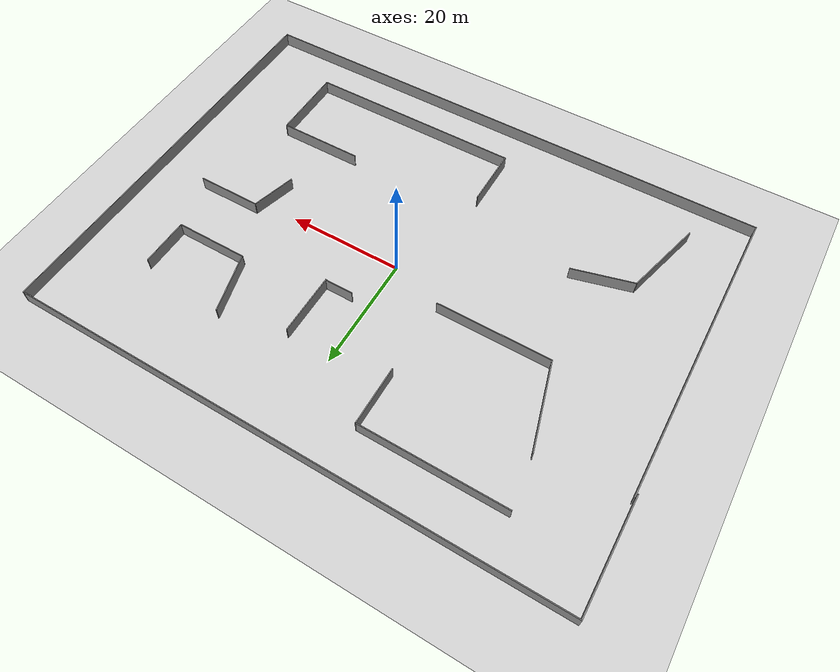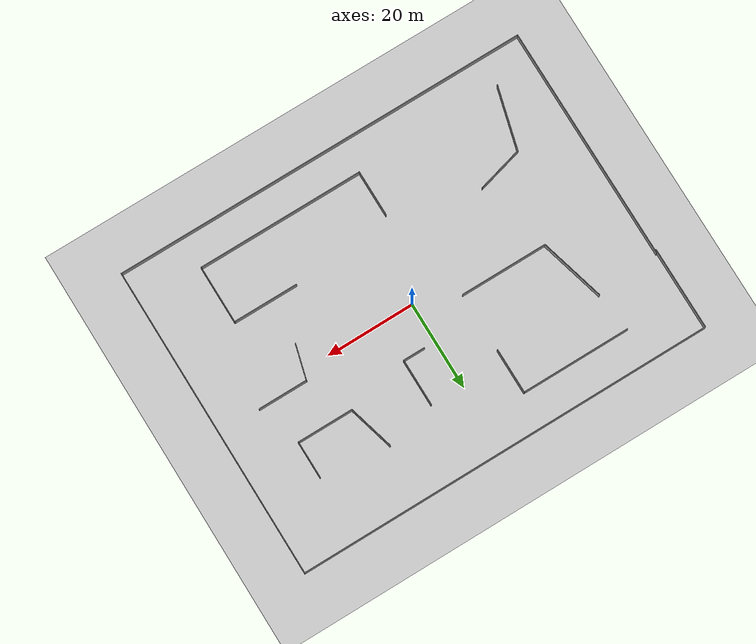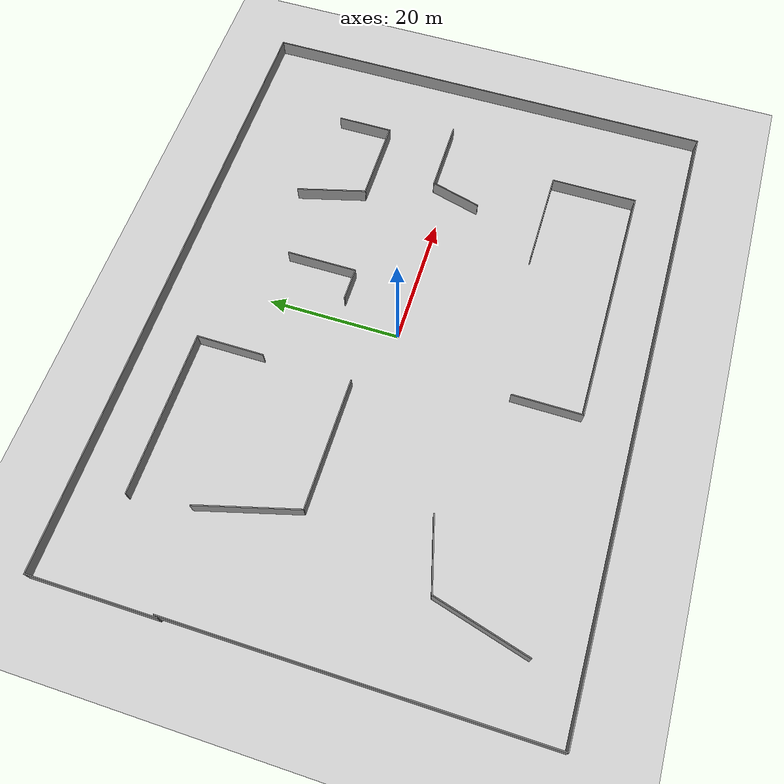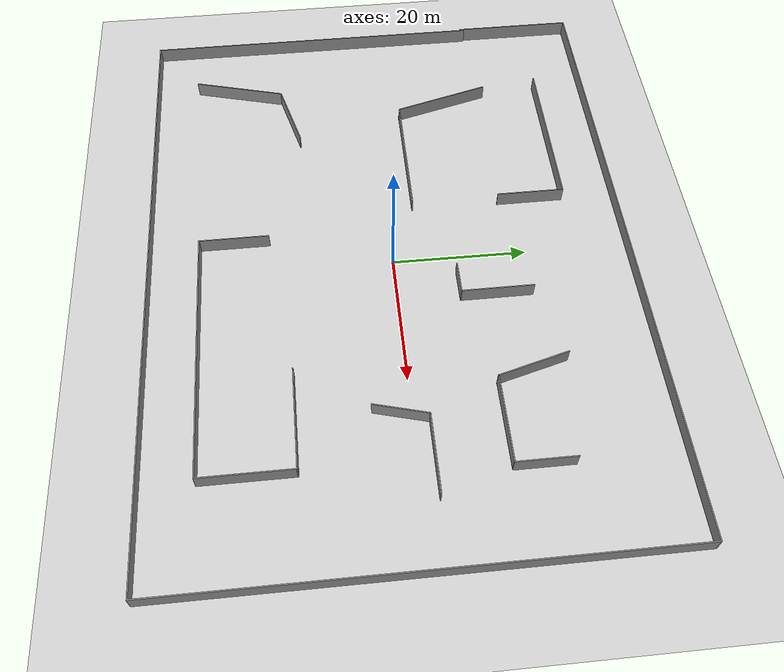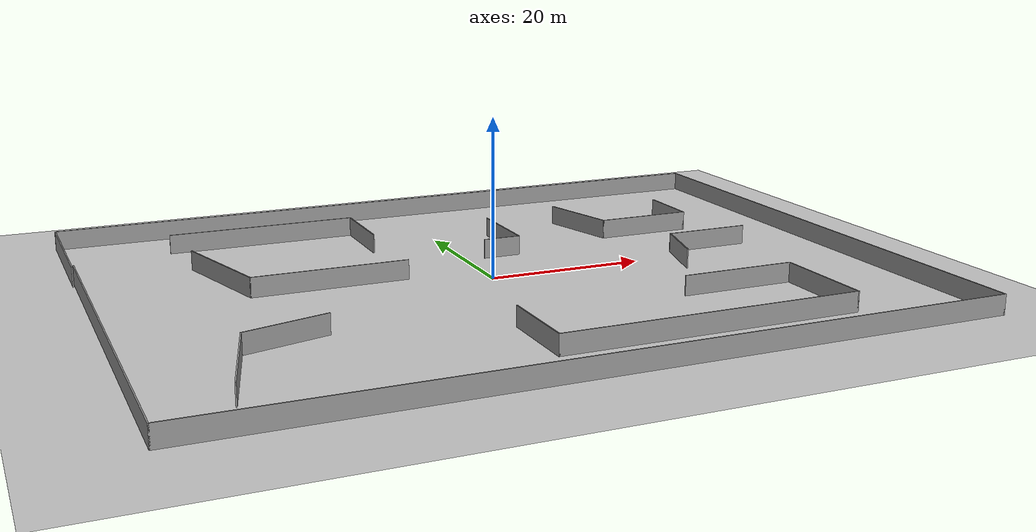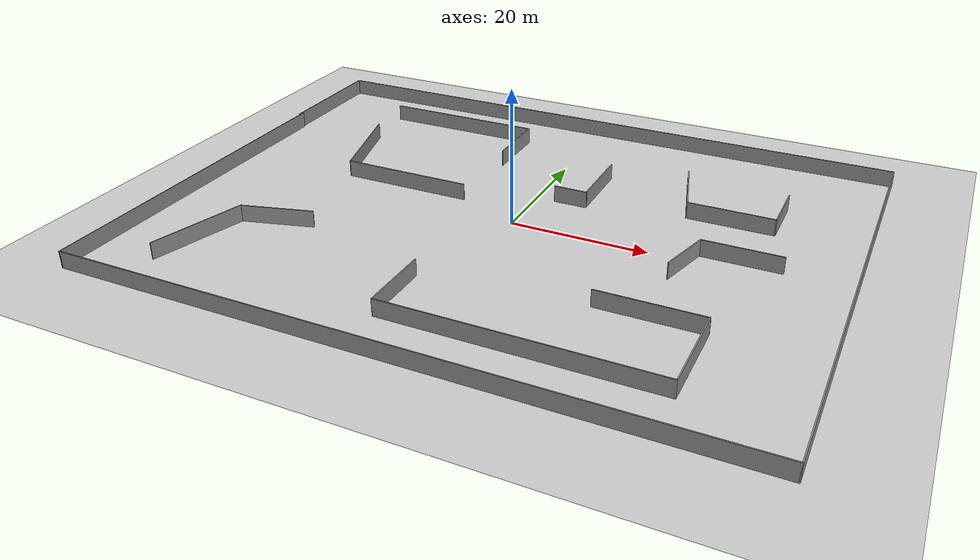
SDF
<sdf version="1.7">
 <world name="default">
  <light name="sun" type="directional">
   <pose>0 0 10 0 -0 0</pose>
   <diffuse>0.8 0.8 0.8 1</diffuse>
   <specular>0.2 0.2 0.2 1</specular>
   <attenuation>
    <range>1000</range>
    <constant>0.9</constant>
    <linear>0.01</linear>
    <quadratic>0.001</quadratic>
   </attenuation>
   <direction>-0.5 0.1 -0.9</direction>
   <spot><inner_angle>0</inner_angle><outer_angle>0</outer_angle><falloff>0</falloff></spot>
  </light>
  <model name="ground_plane">
   <static>1</static>
   <link name="link">
    <collision name="collision">
     <geometry><plane><normal>0 0 1</normal><size>100 100</size></plane></geometry>
     <surface><friction><ode><mu>100</mu><mu2>50</mu2></ode></friction></surface>
    </collision>
    <visual name="visual">
     <cast_shadows>0</cast_shadows>
     <geometry><plane><normal>0 0 1</normal><size>100 100</size></plane></geometry>
     <material>
      <script><uri>file://media/materials/scripts/gazebo.material</uri><name>Gazebo/Grey</name></script>
     </material>
    </visual>
   </link>
  </model>
  <gravity>0 0 -9.8</gravity>
  <magnetic_field>6e-06 2.3e-05 -4.2e-05</magnetic_field>
  <atmosphere type="adiabatic"/>
  <physics type="ode">
   <max_step_size>0.001</max_step_size>
   <real_time_factor>1</real_time_factor>
   <real_time_update_rate>1000</real_time_update_rate>
  </physics>
  <scene><ambient>0.4 0.4 0.4 1</ambient><background>0.7 0.7 0.7 1</background><shadows>1</shadows></scene>
  <audio><device>default</device></audio>
  <spherical_coordinates>
   <surface_model>EARTH_WGS84</surface_model>
   <latitude_deg>0</latitude_deg>
   <longitude_deg>0</longitude_deg>
   <elevation>0</elevation>
   <heading_deg>0</heading_deg>
  </spherical_coordinates>
  <model name="Untitled3">
   <pose>-0.447535 -0.405235 0 0 -0 0</pose>
   <link name="Wall_11">
    <collision name="Wall_11_Collision">
     <geometry><box><size>24.75 0.15 2.5</size></box></geometry>
     <pose>0 0 1.25 0 -0 0</pose>
    </collision>
    <visual name="Wall_11_Visual">
     <pose>0 0 1.25 0 -0 0</pose>
     <geometry><box><size>24.75 0.15 2.5</size></box></geometry>
     <material>
      <script><uri>file://media/materials/scripts/gazebo.material</uri><name>Gazebo/Grey</name></script>
      <ambient>1 1 1 1</ambient>
     </material>
     <meta><layer>0</layer></meta>
    </visual>
    <pose>-21.4991 27.7589 0 0 -0 0</pose>
   </link>
   <link name="Wall_12">
    <collision name="Wall_12_Collision">
     <geometry><box><size>10.25 0.15 2.5</size></box></geometry>
     <pose>0 0 1.25 0 -0 0</pose>
    </collision>
    <visual name="Wall_12_Visual">
     <pose>0 0 1.25 0 -0 0</pose>
     <geometry><box><size>10.25 0.15 2.5</size></box></geometry>
     <material>
      <script><uri>file://media/materials/scripts/gazebo.material</uri><name>Gazebo/Grey</name></script>
      <ambient>1 1 1 1</ambient>
     </material>
     <meta><layer>0</layer></meta>
    </visual>
    <pose>-9.19909 22.7089 0 0 -0 -1.5708</pose>
   </link>
   <link name="Wall_14">
    <collision name="Wall_14_Collision">
     <geometry><box><size>15.25 0.15 2.5</size></box></geometry>
     <pose>0 0 1.25 0 -0 0</pose>
    </collision>
    <visual name="Wall_14_Visual">
     <pose>0 0 1.25 0 -0 0</pose>
     <geometry><box><size>15.25 0.15 2.5</size></box></geometry>
     <material>
      <script><uri>file://media/materials/scripts/gazebo.material</uri><name>Gazebo/Grey</name></script>
      <ambient>1 1 1 1</ambient>
     </material>
     <meta><layer>0</layer></meta>
    </visual>
    <pose>-30.7628 11.5919 0 0 -0 -1.309</pose>
   </link>
   <link name="Wall_15">
    <collision name="Wall_15_Collision">
     <geometry><box><size>19.75 0.15 2.5</size></box></geometry>
     <pose>0 0 1.25 0 -0 0</pose>
    </collision>
    <visual name="Wall_15_Visual">
     <pose>0 0 1.25 0 -0 0</pose>
     <geometry><box><size>19.75 0.15 2.5</size></box></geometry>
     <material>
      <script><uri>file://media/materials/scripts/gazebo.material</uri><name>Gazebo/Grey</name></script>
      <ambient>1 1 1 1</ambient>
     </material>
     <meta><layer>0</layer></meta>
    </visual>
    <pose>-19.0087 4.29912 0 0 -0 0</pose>
   </link>
   <link name="Wall_17">
    <collision name="Wall_17_Collision">
     <geometry><box><size>14.5 0.15 2.5</size></box></geometry>
     <pose>0 0 1.25 0 -0 0</pose>
    </collision>
    <visual name="Wall_17_Visual">
     <pose>0 0 1.25 0 -0 0</pose>
     <geometry><box><size>14.5 0.15 2.5</size></box></geometry>
     <material>
      <script><uri>file://media/materials/scripts/gazebo.material</uri><name>Gazebo/Grey</name></script>
      <ambient>1 1 1 1</ambient>
     </material>
     <meta><layer>0</layer></meta>
    </visual>
    <pose>-36.271 -22.0198 0 0 -0 1.309</pose>
   </link>
   <link name="Wall_18">
    <collision name="Wall_18_Collision">
     <geometry><box><size>10.75 0.15 2.5</size></box></geometry>
     <pose>0 0 1.25 0 -0 0</pose>
    </collision>
    <visual name="Wall_18_Visual">
     <pose>0 0 1.25 0 -0 0</pose>
     <geometry><box><size>10.75 0.15 2.5</size></box></geometry>
     <material>
      <script><uri>file://media/materials/scripts/gazebo.material</uri><name>Gazebo/Grey</name></script>
      <ambient>1 1 1 1</ambient>
     </material>
     <meta><layer>0</layer></meta>
    </visual>
    <pose>-29.2946 -13.7175 0 0 -0 0.261799</pose>
   </link>
   <link name="Wall_20">
    <collision name="Wall_20_Collision">
     <geometry><box><size>10.5 0.15 2.5</size></box></geometry>
     <pose>0 0 1.25 0 -0 0</pose>
    </collision>
    <visual name="Wall_20_Visual">
     <pose>0 0 1.25 0 -0 0</pose>
     <geometry><box><size>10.5 0.15 2.5</size></box></geometry>
     <material>
      <script><uri>file://media/materials/scripts/gazebo.material</uri><name>Gazebo/Grey</name></script>
      <ambient>1 1 1 1</ambient>
     </material>
     <meta><layer>0</layer></meta>
    </visual>
    <pose>-4.57869 -23.0865 0 0 -0 -1.5708</pose>
   </link>
   <link name="Wall_21">
    <collision name="Wall_21_Collision">
     <geometry><box><size>37.75 0.15 2.5</size></box></geometry>
     <pose>0 0 1.25 0 -0 0</pose>
    </collision>
    <visual name="Wall_21_Visual">
     <pose>0 0 1.25 0 -0 0</pose>
     <geometry><box><size>37.75 0.15 2.5</size></box></geometry>
     <material>
      <script><uri>file://media/materials/scripts/gazebo.material</uri><name>Gazebo/Grey</name></script>
      <ambient>1 1 1 1</ambient>
     </material>
     <meta><layer>0</layer></meta>
    </visual>
    <pose>14.2213 -28.2615 0 0 -0 0</pose>
   </link>
   <link name="Wall_22">
    <collision name="Wall_22_Collision">
     <geometry><box><size>13.25 0.15 2.5</size></box></geometry>
     <pose>0 0 1.25 0 -0 0</pose>
    </collision>
    <visual name="Wall_22_Visual">
     <pose>0 0 1.25 0 -0 0</pose>
     <geometry><box><size>13.25 0.15 2.5</size></box></geometry>
     <material>
      <script><uri>file://media/materials/scripts/gazebo.material</uri><name>Gazebo/Grey</name></script>
      <ambient>1 1 1 1</ambient>
     </material>
     <meta><layer>0</layer></meta>
    </visual>
    <pose>33.0213 -21.7115 0 0 -0 1.5708</pose>
   </link>
   <link name="Wall_23">
    <collision name="Wall_23_Collision">
     <geometry><box><size>14.75 0.15 2.5</size></box></geometry>
     <pose>0 0 1.25 0 -0 0</pose>
    </collision>
    <visual name="Wall_23_Visual">
     <pose>0 0 1.25 0 -0 0</pose>
     <geometry><box><size>14.75 0.15 2.5</size></box></geometry>
     <material>
      <script><uri>file://media/materials/scripts/gazebo.material</uri><name>Gazebo/Grey</name></script>
      <ambient>1 1 1 1</ambient>
     </material>
     <meta><layer>0</layer></meta>
    </visual>
    <pose>25.7213 -15.1615 0 0 -0 3.14159</pose>
   </link>
   <link name="Wall_25">
    <collision name="Wall_25_Collision">
     <geometry><box><size>10.75 0.15 2.5</size></box></geometry>
     <pose>0 0 1.25 0 -0 0</pose>
    </collision>
    <visual name="Wall_25_Visual">
     <pose>0 0 1.25 0 -0 0</pose>
     <geometry><box><size>10.75 0.15 2.5</size></box></geometry>
     <material>
      <script><uri>file://media/materials/scripts/gazebo.material</uri><name>Gazebo/Grey</name></script>
      <ambient>1 1 1 1</ambient>
     </material>
     <meta><layer>0</layer></meta>
    </visual>
    <pose>20.8187 17.6612 0 0 -0 -1.309</pose>
   </link>
   <link name="Wall_26">
    <collision name="Wall_26_Collision">
     <geometry><box><size>12.75 0.15 2.5</size></box></geometry>
     <pose>0 0 1.25 0 -0 0</pose>
    </collision>
    <visual name="Wall_26_Visual">
     <pose>0 0 1.25 0 -0 0</pose>
     <geometry><box><size>12.75 0.15 2.5</size></box></geometry>
     <material>
      <script><uri>file://media/materials/scripts/gazebo.material</uri><name>Gazebo/Grey</name></script>
      <ambient>1 1 1 1</ambient>
     </material>
     <meta><layer>0</layer></meta>
    </visual>
    <pose>28.4905 12.5418 0 0 -0 0</pose>
   </link>
   <link name="Wall_27">
    <collision name="Wall_27_Collision">
     <geometry><box><size>8.5 0.15 2.5</size></box></geometry>
     <pose>0 0 1.25 0 -0 0</pose>
    </collision>
    <visual name="Wall_27_Visual">
     <pose>0 0 1.25 0 -0 0</pose>
     <geometry><box><size>8.5 0.15 2.5</size></box></geometry>
     <material>
      <script><uri>file://media/materials/scripts/gazebo.material</uri><name>Gazebo/Grey</name></script>
      <ambient>1 1 1 1</ambient>
     </material>
     <meta><layer>0</layer></meta>
    </visual>
    <pose>34.7905 16.7168 0 0 -0 1.5708</pose>
   </link>
   <link name="Wall_29">
    <collision name="Wall_29_Collision">
     <geometry><box><size>8 0.15 2.5</size></box></geometry>
     <pose>0 0 1.25 0 -0 0</pose>
    </collision>
    <visual name="Wall_29_Visual">
     <pose>0 0 1.25 0 -0 0</pose>
     <geometry><box><size>8 0.15 2.5</size></box></geometry>
     <material>
      <script><uri>file://media/materials/scripts/gazebo.material</uri><name>Gazebo/Grey</name></script>
      <ambient>1 1 1 1</ambient>
     </material>
     <meta><layer>0</layer></meta>
    </visual>
    <pose>25.874 -1.13336 0 0 -0 1.309</pose>
   </link>
   <link name="Wall_30">
    <collision name="Wall_30_Collision">
     <geometry><box><size>11.25 0.15 2.5</size></box></geometry>
     <pose>0 0 1.25 0 -0 0</pose>
    </collision>
    <visual name="Wall_30_Visual">
     <pose>0 0 1.25 0 -0 0</pose>
     <geometry><box><size>11.25 0.15 2.5</size></box></geometry>
     <material>
      <script><uri>file://media/materials/scripts/gazebo.material</uri><name>Gazebo/Grey</name></script>
      <ambient>1 1 1 1</ambient>
     </material>
     <meta><layer>0</layer></meta>
    </visual>
    <pose>32.4399 2.6579 0 0 -0 0</pose>
   </link>
   <link name="Wall_32">
    <collision name="Wall_32_Collision">
     <geometry><box><size>10.75 0.15 2.5</size></box></geometry>
     <pose>0 0 1.25 0 -0 0</pose>
    </collision>
    <visual name="Wall_32_Visual">
     <pose>0 0 1.25 0 -0 0</pose>
     <geometry><box><size>10.75 0.15 2.5</size></box></geometry>
     <material>
      <script><uri>file://media/materials/scripts/gazebo.material</uri><name>Gazebo/Grey</name></script>
      <ambient>1 1 1 1</ambient>
     </material>
     <meta><layer>0</layer></meta>
    </visual>
    <pose>8.06199 14.7881 0 0 -0 -1.5708</pose>
   </link>
   <link name="Wall_33">
    <collision name="Wall_33_Collision">
     <geometry><box><size>5 0.15 2.5</size></box></geometry>
     <pose>0 0 1.25 0 -0 0</pose>
    </collision>
    <visual name="Wall_33_Visual">
     <pose>0 0 1.25 0 -0 0</pose>
     <geometry><box><size>5 0.15 2.5</size></box></geometry>
     <material>
      <script><uri>file://media/materials/scripts/gazebo.material</uri><name>Gazebo/Grey</name></script>
      <ambient>1 1 1 1</ambient>
     </material>
     <meta><layer>0</layer></meta>
    </visual>
    <pose>5.63699 9.48809 0 0 -0 3.14159</pose>
   </link>
   <link name="Wall_5">
    <collision name="Wall_5_Collision">
     <geometry><box><size>53.5 0.15 2.5</size></box></geometry>
     <pose>0 0 1.25 0 -0 0</pose>
    </collision>
    <visual name="Wall_5_Visual">
     <pose>0 0 1.25 0 -0 0</pose>
     <geometry><box><size>53.5 0.15 2.5</size></box></geometry>
     <material>
      <script><uri>file://media/materials/scripts/gazebo.material</uri><name>Gazebo/Grey</name></script>
      <ambient>1 1 1 1</ambient>
     </material>
     <meta><layer>0</layer></meta>
    </visual>
    <pose>-47.175 -9 0 0 -0 -1.5708</pose>
   </link>
   <link name="Wall_6">
    <collision name="Wall_6_Collision">
     <geometry><box><size>94.75 0.15 2.5</size></box></geometry>
     <pose>0 0 1.25 0 -0 0</pose>
    </collision>
    <visual name="Wall_6_Visual">
     <pose>0 0 1.25 0 -0 0</pose>
     <geometry><box><size>94.75 0.15 2.5</size></box></geometry>
     <material>
      <script><uri>file://media/materials/scripts/gazebo.material</uri><name>Gazebo/Grey</name></script>
      <ambient>1 1 1 1</ambient>
     </material>
     <meta><layer>0</layer></meta>
    </visual>
    <pose>0.124999 -35.675 0 0 -0 0</pose>
   </link>
   <link name="Wall_7">
    <collision name="Wall_7_Collision">
     <geometry><box><size>71.5 0.15 2.5</size></box></geometry>
     <pose>0 0 1.25 0 -0 0</pose>
    </collision>
    <visual name="Wall_7_Visual">
     <pose>0 0 1.25 0 -0 0</pose>
     <geometry><box><size>71.5 0.15 2.5</size></box></geometry>
     <material>
      <script><uri>file://media/materials/scripts/gazebo.material</uri><name>Gazebo/Grey</name></script>
      <ambient>1 1 1 1</ambient>
     </material>
     <meta><layer>0</layer></meta>
    </visual>
    <pose>47.425 -1e-06 0 0 -0 1.5708</pose>
   </link>
   <link name="Wall_8">
    <collision name="Wall_8_Collision">
     <geometry><box><size>95 0.15 2.5</size></box></geometry>
     <pose>0 0 1.25 0 -0 0</pose>
    </collision>
    <visual name="Wall_8_Visual">
     <pose>0 0 1.25 0 -0 0</pose>
     <geometry><box><size>95 0.15 2.5</size></box></geometry>
     <material>
      <script><uri>file://media/materials/scripts/gazebo.material</uri><name>Gazebo/Grey</name></script>
      <ambient>1 1 1 1</ambient>
     </material>
     <meta><layer>0</layer></meta>
    </visual>
    <pose>-1e-06 35.675 0 0 -0 3.14159</pose>
   </link>
   <link name="Wall_9">
    <collision name="Wall_9_Collision">
     <geometry><box><size>18.75 0.15 2.5</size></box></geometry>
     <pose>0 0 1.25 0 -0 0</pose>
    </collision>
    <visual name="Wall_9_Visual">
     <pose>0 0 1.25 0 -0 0</pose>
     <geometry><box><size>18.75 0.15 2.5</size></box></geometry>
     <material>
      <script><uri>file://media/materials/scripts/gazebo.material</uri><name>Gazebo/Grey</name></script>
      <ambient>1 1 1 1</ambient>
     </material>
     <meta><layer>0</layer></meta>
    </visual>
    <pose>-47.425 26.375 0 0 -0 -1.5708</pose>
   </link>
   <static>1</static>
  </model>
 </world>
</sdf>
